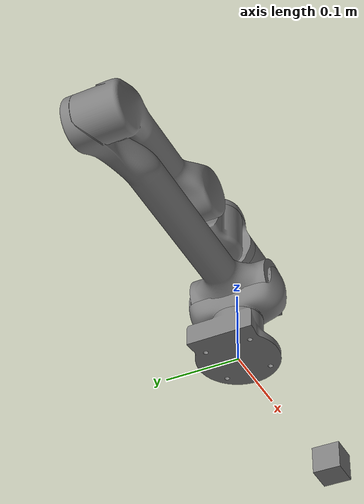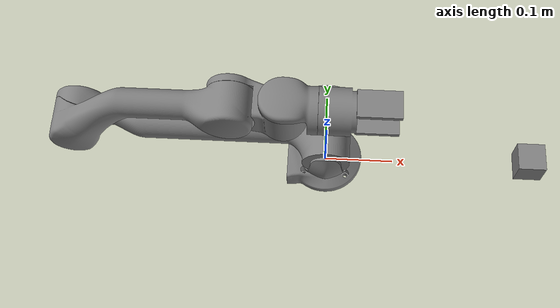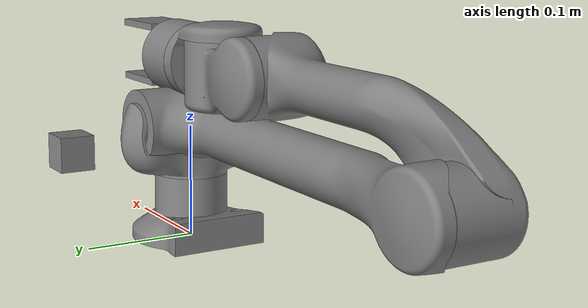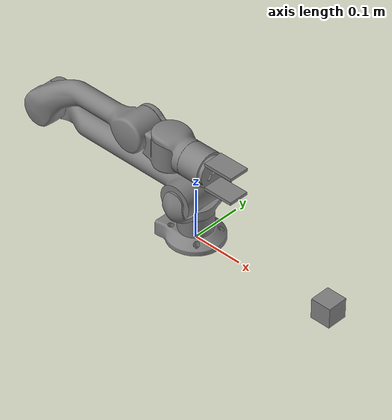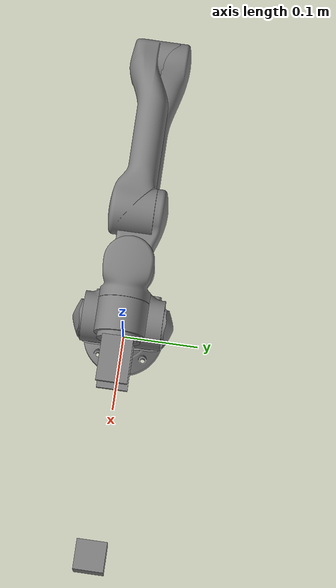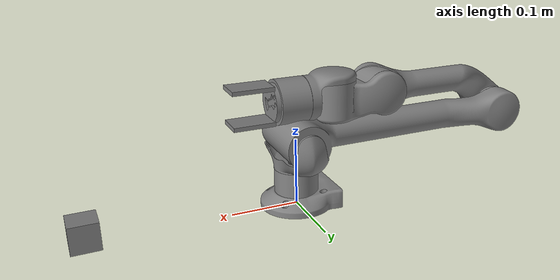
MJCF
<mujoco model="z1">
  <compiler angle="radian" meshdir="assets"/>

  <option timestep="0.01"/>

  <default>
    <default class="z1">
      <general biastype="affine" gainprm="1000" biasprm="0 -1000 -100" forcerange="-30 30"/>
      <default class="visual">
        <geom type="mesh" group="2" contype="0" conaffinity="0"/>
      </default>
      <default class="collision">
        <geom type="box" group="3" mass="0" density="0"/>
      </default>
    </default>
  </default>

  <asset>
    <mesh file="z1_Link00.stl"/>
    <mesh file="z1_Link01.stl"/>
    <mesh file="z1_Link02.stl"/>
    <mesh file="z1_Link03.stl"/>
    <mesh file="z1_Link04.stl"/>
    <mesh file="z1_Link05.stl"/>
    <mesh file="z1_Link06.stl"/>
  </asset>

  <default>
    <default class="2f85">
      <mesh scale="0.001 0.001 0.001"/>
      <general biastype="affine"/>

      <joint axis="1 0 0"/>
      <default class="driver">
        <joint range="0 0.8" armature="0.005" damping="0.1" solimplimit="0.95 0.99 0.001" solreflimit="0.005 1"/>
      </default>
      <default class="follower">
        <joint range="-0.872664 0.872664" armature="0.001" pos="0 -0.018 0.0065" solimplimit="0.95 0.99 0.001" solreflimit="0.005 1"/>
      </default>
      <default class="spring_link">
        <joint range="-0.29670597283 0.8" armature="0.001" stiffness="0.05" springref="2.62" damping="0.00125"/>
      </default>
      <default class="coupler">
        <joint range="-1.57 0" armature="0.001" solimplimit="0.95 0.99 0.001" solreflimit="0.005 1"/>
      </default>

      <default class="collision_finger">
        <geom type="mesh" group="3"/>
        <default class="pad_box1">
          <geom mass="0" type="box" pos="0 -0.0026 0.028125" size="0.011 0.004 0.009375" friction="0.7"
            solimp="0.95 0.99 0.001" solref="0.004 1" priority="1" rgba="0.55 0.55 0.55 1"/>
        </default>
        <default class="pad_box2">
          <geom mass="0" type="box" pos="0 -0.0026 0.009375" size="0.011 0.004 0.009375" friction="0.6"
            solimp="0.95 0.99 0.001" solref="0.004 1" priority="1" rgba="0.45 0.45 0.45 1"/>
        </default>
      </default>
    </default>
  </default>
  <asset>
    <material name="metal" rgba="0.58 0.58 0.58 1"/>
    <material name="silicone" rgba="0.1882 0.1882 0.1882 1"/>
    <material name="gray" rgba="0.4627 0.4627 0.4627 1"/>
    <material name="black" rgba="0.149 0.149 0.149 1"/>

    <mesh class="2f85" file="base_mount.stl"/>
    <mesh class="2f85" file="base.stl"/>
    <mesh class="2f85" file="driver.stl"/>
    <mesh class="2f85" file="coupler.stl"/>
    <mesh class="2f85" file="follower.stl"/>
    <mesh class="2f85" file="pad.stl"/>
    <mesh class="2f85" file="silicone_pad.stl"/>
    <mesh class="2f85" file="spring_link.stl"/>
  </asset>

  <worldbody>
    <body name="link00" childclass="z1">
      <inertial pos="-0.00334984 -0.00013615 0.0249584" quat="-0.00692194 0.682592 0.00133293 0.730766" mass="0.472475"
        diaginertia="0.000531375 0.000415207 0.000378658"/>
      <geom class="visual" mesh="z1_Link00"/>
      <camera name="side" pos="0 -3 1" xyaxes="1 0 0 0 1 2" mode="trackcom"/>
      <geom size="0.0325 0.0325 0.0255" pos="0 0 0.0255" class="collision"/>
      <body name="link01" pos="0 0 0.0585">
        <camera name="side1" pos="0 -3 1" xyaxes="1 0 0 0 1 2" mode="trackcom"/>
        <inertial pos="2.47e-06 -0.00025198 0.0231717" quat="0.708578 0.705633 0.000281462 -0.000355927" mass="0.673326"
          diaginertia="0.00128328 0.000839362 0.000719308"/>
        <joint name="joint1" axis="0 0 1" range="-2.61799 2.61799"/>
        <geom class="visual" mesh="z1_Link01"/>
        <body name="link02" pos="0 0 0.045">
          <inertial pos="-0.110126 0.00240029 0.00158266" quat="0.00748058 0.707092 -0.0114473 0.70699" mass="1.19132"
            diaginertia="0.0246612 0.0243113 0.00100468"/>
          <joint name="joint2" axis="0 1 0" range="0 2.96706" damping="2"/>
          <geom class="visual" mesh="z1_Link02"/>
          <geom size="0.0325 0.0325 0.051" quat="1 1 0 0" class="collision"/>
          <geom size="0.0225 0.0225 0.1175" pos="-0.1625 0 0" quat="1 0 1 0" class="collision"/>
          <geom size="0.0325 0.0325 0.0255" pos="-0.35 0 0" quat="1 1 0 0" class="collision"/>
          <body name="link03" pos="-0.35 0 0">
            <inertial pos="0.106092 -0.00541815 0.0347638" quat="0.540557 0.443575 0.426319 0.573839" mass="0.839409"
              diaginertia="0.00954365 0.00938711 0.000558432"/>
            <joint name="joint3" axis="0 1 0" range="-2.87979 0"/>
            <geom class="visual" mesh="z1_Link03"/>
            <geom size="0.02 0.02 0.058" pos="0.128 0 0.055" quat="1 0 1 0" class="collision"/>
            <geom size="0.0325 0.0325 0.0295" pos="0.2205 0 0.055" quat="0.5 -0.5 0.5 0.5" class="collision"/>
            <body name="link04" pos="0.218 0 0.057">
              <inertial pos="0.0436668 0.00364738 -0.00170192" quat="0.0390835 0.726445 -0.0526787 0.684087"
                mass="0.564046" diaginertia="0.000981656 0.00094053 0.000302655"/>
              <joint name="joint4" axis="0 1 0" range="-1.51844 1.51844"/>
              <geom class="visual" mesh="z1_Link04"/>
              <geom size="0.0325 0.0325 0.0335" pos="0.072 0 0" class="collision"/>
              <body name="link05" pos="0.07 0 0">
                <inertial pos="0.0312153 0 0.00646316" quat="0.462205 0.535209 0.53785 0.45895" mass="0.389385"
                  diaginertia="0.000558961 0.000547317 0.000167332"/>
                <joint name="joint5" axis="0 0 1" range="-1.3439 1.3439"/>
                <geom class="visual" mesh="z1_Link05"/>
                <body name="link06" pos="0.0492 0 0">
                  <inertial pos="0.0241569 -0.00017355 -0.00143876" quat="0.998779 0.0457735 -0.00663717 0.0173548"
                    mass="0.288758" diaginertia="0.00018333 0.000147464 0.000146786"/>
                  <joint name="joint6" axis="1 0 0" range="-2.79253 2.79253"/>
                  <geom class="visual" mesh="z1_Link06"/>
                  <geom size="0.0325 0.0325 0.0255" pos="0.0255 0 0" quat="1 0 1 0" class="collision"/>
                  <body name="finger_right" pos="0.08 0 0.025">
                    <joint name="joint_right" axis="0 0 -1" range="0 0.02 " type="slide"  damping="0.5"  />
                    <inertial pos="0.0241569 -0.00017355 -0.00143876" quat="0.998779 0.0457735 -0.00663717 0.0173548"
                    mass="0.288758" diaginertia="0.00018333 0.000147464 0.000146786"/>
                    <geom type="box" size="0.03 0.02 0.003" pos="0.0 0 0" quat="1 0 0 0" />
                  </body>
                  <body name="finger_left" pos="0.08 0 -0.025">
                    <joint name="joint_left" axis="0 0 1" range="0 0.02" type="slide"  damping="0.5" />
                    <geom type="box" size="0.03 0.02 0.003" pos="0.0 0 0" quat="1 0 0 0" />
                    <inertial pos="0.0241569 -0.00017355 -0.00143876" quat="0.998779 0.0457735 -0.00663717 0.0173548"
                    mass="0.288758" diaginertia="0.00018333 0.000147464 0.000146786"/>
                  </body>

                </body>
              </body>
            </body>
          </body>
        </body>
      </body>
    </body>
    <body name="load" pos="0.3 0 0.0198922" childclass="z1">
      <freejoint name="load_joint" />
      <inertial pos="0 0 0" quat="0.0 0.0 0.0 1.0" mass="0.3" diaginertia="0.00221 0.00221 0.00221 "/>

      <geom type="box" size="0.02 0.02 0.02"  name="load_geom"/>

    </body>
  </worldbody>

  <actuator>
    <position  name="motor1" joint="joint1" ctrlrange="-3.14158 3.14158" kp="5"/>
    <position  name="motor2" joint="joint2" ctrlrange="-3.14158 3.14158" kp="30"/>
    <position  name="motor3" joint="joint3" ctrlrange="-3.14158 3.14158" kp="50"/>
    <position  name="motor4" joint="joint4" ctrlrange="-3.14158 3.14158" kp="30"/>
    <position  name="motor5" joint="joint5" ctrlrange="-3.14158 3.14158" kp="1"/>
    <position  name="motor6" joint="joint6" ctrlrange="-3.14158 3.14158" kp="1"/>

    <position name="finger_r" joint="joint_right" ctrlrange="-3.14158 3.14158" kp="43"/>
    <position name="finger_l" joint="joint_left" ctrlrange="-3.14158 3.14158" kp="43"/>
    <velocity  name="motor1v" joint="joint1" ctrlrange="-0.314158 0.314158" kv="1"/>
    <velocity  name="motor2v" joint="joint2" ctrlrange="-0.314158 0.314158" kv="0.8"/>
    <velocity  name="motor3v" joint="joint3" ctrlrange="-0.314158 0.314158" kv="1"/>
    <velocity  name="motor4v" joint="joint4" ctrlrange="-0.314158 0.314158" kv="0.1"/>
    <velocity  name="motor5v" joint="joint5" ctrlrange="-0.314158 0.314158" kv="0.1"/>
    <velocity  name="motor6v" joint="joint6" ctrlrange="-0.314158 0.314158" kv="0.1"/>

  </actuator>
  <keyframe>

  <key name="neutral_pose" qpos="
    16e-6 -0.0007421 -0.047 0.06 -4e-05  2.33e-5 0.0009 0
    5 0 0.0198922 1 0 0 0"/>
  </keyframe>
  <contact>

  </contact>

  <equality>
    <joint joint1="joint_right" joint2="joint_left" polycoef="0 1 0 0 0"/>
  </equality>
</mujoco>
